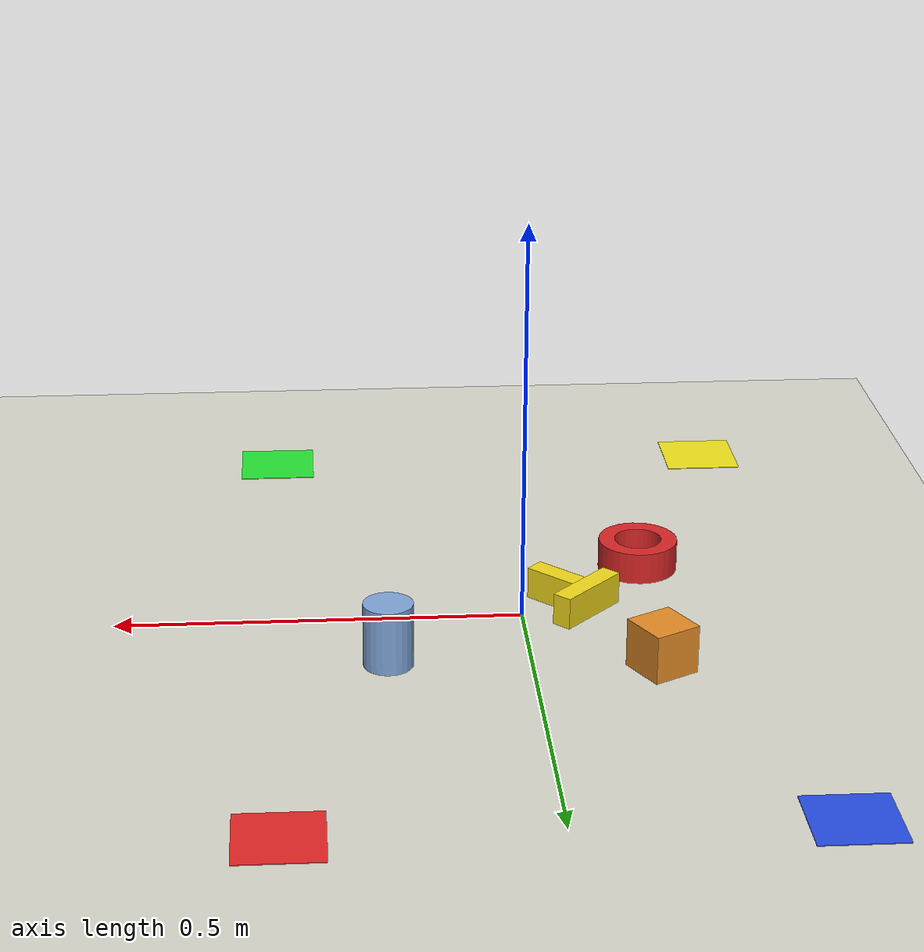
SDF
<sdf version="1.9">
 <world name="ur5_dual_workspace">
  <physics name="1ms" type="ode">
   <max_step_size>0.001</max_step_size>
   <real_time_factor>1.0</real_time_factor>
   <real_time_update_rate>1000</real_time_update_rate>
  </physics>
  <plugin filename="gz-sim-physics-system" name="gz::sim::systems::Physics"/>
  <plugin filename="gz-sim-user-commands-system" name="gz::sim::systems::UserCommands"/>
  <plugin filename="gz-sim-scene-broadcaster-system" name="gz::sim::systems::SceneBroadcaster"/>
  <plugin filename="gz-sim-contact-system" name="gz::sim::systems::Contact"/>
  <scene>
   <ambient>0.4 0.4 0.4 1.0</ambient>
   <background>0.7 0.7 0.7 1.0</background>
   <shadows>true</shadows>
  </scene>
  <light type="directional" name="sun">
   <pose>0 0 10 0 0 0</pose>
   <diffuse>0.8 0.8 0.8 1</diffuse>
   <specular>0.2 0.2 0.2 1</specular>
   <attenuation>
    <range>1000</range>
    <constant>0.9</constant>
    <linear>0.01</linear>
    <quadratic>0.001</quadratic>
   </attenuation>
   <direction>-0.5 0.1 -0.9</direction>
  </light>
  <light type="directional" name="fill_light">
   <cast_shadows>false</cast_shadows>
   <pose>0 0 5 0 0 0</pose>
   <diffuse>0.5 0.5 0.5 1</diffuse>
   <specular>0.1 0.1 0.1 1</specular>
   <direction>0 0 -1</direction>
  </light>
  <model name="ground_plane">
   <static>true</static>
   <link name="link">
    <collision name="collision">
     <geometry><plane><normal>0 0 1</normal><size>100 100</size></plane></geometry>
    </collision>
    <visual name="visual">
     <geometry><plane><normal>0 0 1</normal><size>100 100</size></plane></geometry>
     <material>
      <ambient>0.85 0.85 0.80 1</ambient>
      <diffuse>0.85 0.85 0.80 1</diffuse>
      <specular>0.1 0.1 0.1 1</specular>
     </material>
    </visual>
   </link>
  </model>
  <model name="cube">
   <pose>-0.15 0.15 0 0 0 0.5</pose>
   <link name="link">
    <pose>0 0 0.03 0 0 0</pose>
    <inertial>
     <mass>0.151</mass>
     <inertia>
      <ixx>9.06e-05</ixx>
      <ixy>0</ixy>
      <ixz>0</ixz>
      <iyy>9.06e-05</iyy>
      <iyz>0</iyz>
      <izz>9.06e-05</izz>
     </inertia>
    </inertial>
    <collision name="collision">
     <geometry><box><size>0.06 0.06 0.06</size></box></geometry>
     <surface><friction><ode><mu>0.8</mu><mu2>0.8</mu2></ode></friction></surface>
    </collision>
    <visual name="visual">
     <geometry><box><size>0.06 0.06 0.06</size></box></geometry>
     <material>
      <ambient>0.85 0.45 0.10 1</ambient>
      <diffuse>0.90 0.55 0.15 1</diffuse>
      <specular>0.20 0.12 0.03 1</specular>
     </material>
    </visual>
   </link>
  </model>
  <model name="cylinder">
   <pose>0.17 0.12 0 0 0 0</pose>
   <link name="link">
    <pose>0 0 0.04 0 0 0</pose>
    <inertial>
     <mass>0.113</mass>
     <inertia>
      <ixx>8.57e-05</ixx>
      <ixy>0</ixy>
      <ixz>0</ixz>
      <iyy>8.57e-05</iyy>
      <iyz>0</iyz>
      <izz>5.09e-05</izz>
     </inertia>
    </inertial>
    <collision name="collision">
     <geometry><cylinder><radius>0.03</radius><length>0.08</length></cylinder></geometry>
     <surface><friction><ode><mu>0.7</mu><mu2>0.7</mu2></ode></friction></surface>
    </collision>
    <visual name="visual">
     <geometry><cylinder><radius>0.03</radius><length>0.08</length></cylinder></geometry>
     <material>
      <ambient>0.40 0.55 0.75 1</ambient>
      <diffuse>0.50 0.65 0.85 1</diffuse>
      <specular>0.60 0.65 0.70 1</specular>
     </material>
    </visual>
   </link>
  </model>
  <include><uri>model://ring_torus</uri><name>ring</name><pose>-0.16 -0.13 0 0 0 0</pose></include>
  <model name="t_block">
   <pose>-0.02 -0.06 0 0 0 0.8</pose>
   <link name="link">
    <inertial>
     <mass>0.074</mass>
     <pose>0 0.063 0.020 0 0 0</pose>
     <inertia>
      <ixx>6.50e-05</ixx>
      <ixy>0</ixy>
      <ixz>0</ixz>
      <iyy>4.77e-05</iyy>
      <iyz>0</iyz>
      <izz>9.30e-05</izz>
     </inertia>
    </inertial>
    <collision name="c_stem">
     <pose>0 0.035 0.020 0 0 0</pose>
     <geometry><box><size>0.025 0.070 0.040</size></box></geometry>
     <surface><friction><ode><mu>0.8</mu><mu2>0.8</mu2></ode></friction></surface>
    </collision>
    <visual name="v_stem">
     <pose>0 0.035 0.020 0 0 0</pose>
     <geometry><box><size>0.025 0.070 0.040</size></box></geometry>
     <material>
      <ambient>0.90 0.80 0.05 1</ambient>
      <diffuse>0.95 0.85 0.10 1</diffuse>
      <specular>0.30 0.25 0.03 1</specular>
     </material>
    </visual>
    <collision name="c_bar">
     <pose>0 0.0825 0.020 0 0 0</pose>
     <geometry><box><size>0.100 0.025 0.040</size></box></geometry>
     <surface><friction><ode><mu>0.8</mu><mu2>0.8</mu2></ode></friction></surface>
    </collision>
    <visual name="v_bar">
     <pose>0 0.0825 0.020 0 0 0</pose>
     <geometry><box><size>0.100 0.025 0.040</size></box></geometry>
     <material>
      <ambient>0.90 0.80 0.05 1</ambient>
      <diffuse>0.95 0.85 0.10 1</diffuse>
      <specular>0.30 0.25 0.03 1</specular>
     </material>
    </visual>
   </link>
  </model>
  <model name="zone_A">
   <static>true</static>
   <pose>0.3 0.5 0.0005 0 0 0</pose>
   <link name="link">
    <collision name="collision"><geometry><box><size>0.1 0.1 0.001</size></box></geometry></collision>
    <visual name="visual">
     <geometry><box><size>0.1 0.1 0.001</size></box></geometry>
     <material>
      <ambient>0.85 0.10 0.10 1</ambient>
      <diffuse>0.90 0.15 0.15 1</diffuse>
      <specular>0.20 0.05 0.05 1</specular>
     </material>
    </visual>
   </link>
  </model>
  <model name="zone_B">
   <static>true</static>
   <pose>-0.3 0.5 0.0005 0 0 0</pose>
   <link name="link">
    <collision name="collision"><geometry><box><size>0.1 0.1 0.001</size></box></geometry></collision>
    <visual name="visual">
     <geometry><box><size>0.1 0.1 0.001</size></box></geometry>
     <material>
      <ambient>0.10 0.20 0.85 1</ambient>
      <diffuse>0.15 0.30 0.90 1</diffuse>
      <specular>0.05 0.08 0.20 1</specular>
     </material>
    </visual>
   </link>
  </model>
  <model name="zone_C">
   <static>true</static>
   <pose>0.3 -0.5 0.0005 0 0 0</pose>
   <link name="link">
    <collision name="collision"><geometry><box><size>0.1 0.1 0.001</size></box></geometry></collision>
    <visual name="visual">
     <geometry><box><size>0.1 0.1 0.001</size></box></geometry>
     <material>
      <ambient>0.10 0.80 0.15 1</ambient>
      <diffuse>0.15 0.90 0.20 1</diffuse>
      <specular>0.05 0.20 0.05 1</specular>
     </material>
    </visual>
   </link>
  </model>
  <model name="zone_D">
   <static>true</static>
   <pose>-0.3 -0.5 0.0005 0 0 0</pose>
   <link name="link">
    <collision name="collision"><geometry><box><size>0.1 0.1 0.001</size></box></geometry></collision>
    <visual name="visual">
     <geometry><box><size>0.1 0.1 0.001</size></box></geometry>
     <material>
      <ambient>0.90 0.85 0.05 1</ambient>
      <diffuse>0.95 0.90 0.10 1</diffuse>
      <specular>0.25 0.20 0.03 1</specular>
     </material>
    </visual>
   </link>
  </model>
 </world>
</sdf>

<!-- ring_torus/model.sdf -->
<sdf version="1.9">
  <model name="ring_torus">
    <link name="link">
      <inertial>
        <mass>0.054</mass>
        <!-- CoM 在空心圆柱中心 z=h/2=0.020 -->
        <pose>0 0 0.020 0 0 0</pose>
        <inertia>
          <!-- 空心圆柱: Ixx=Iyy=m/12*(3(Ro²+Ri²)+h²), Izz=m/2*(Ro²+Ri²) -->
          <!-- Ro=0.05 Ri=0.03 h=0.04: Ixx=Iyy=5.31e-5  Izz=9.18e-5 -->
          <ixx>5.31e-05</ixx><ixy>0</ixy><ixz>0</ixz>
          <iyy>5.31e-05</iyy><iyz>0</iyz>
          <izz>9.18e-05</izz>
        </inertia>
      </inertial>

      <!-- 碰撞：精确网格 -->
      <collision name="collision">
        <geometry>
          <mesh>
            <uri>meshes/ring_torus.obj</uri>
            <scale>1 1 1</scale>
          </mesh>
        </geometry>
        <surface>
          <friction><ode><mu>0.7</mu><mu2>0.7</mu2></ode></friction>
        </surface>
      </collision>

      <!-- 视觉：同一网格，红色材质 -->
      <visual name="visual">
        <geometry>
          <mesh>
            <uri>meshes/ring_torus.obj</uri>
            <scale>1 1 1</scale>
          </mesh>
        </geometry>
        <material>
          <ambient>0.75 0.10 0.10 1</ambient>
          <diffuse>0.85 0.15 0.15 1</diffuse>
          <specular>0.30 0.05 0.05 1</specular>
        </material>
      </visual>
    </link>
  </model>
</sdf>
